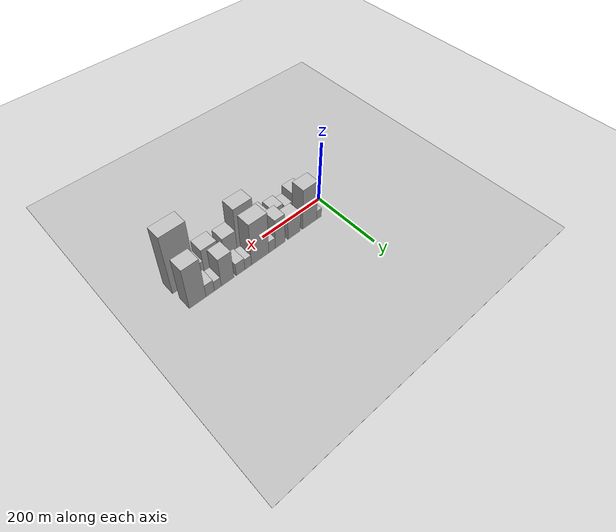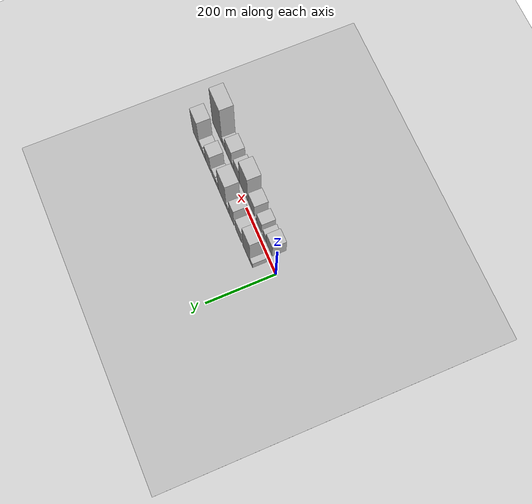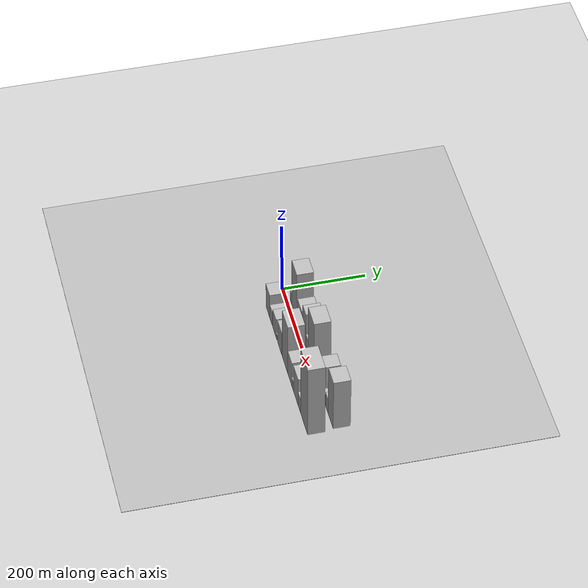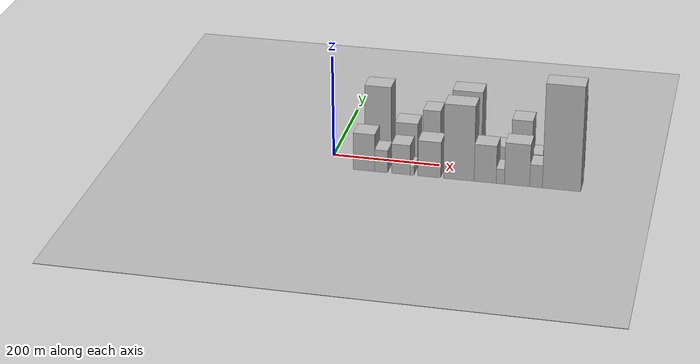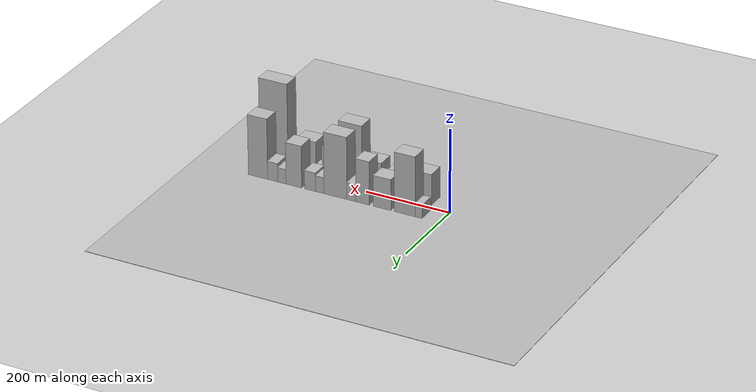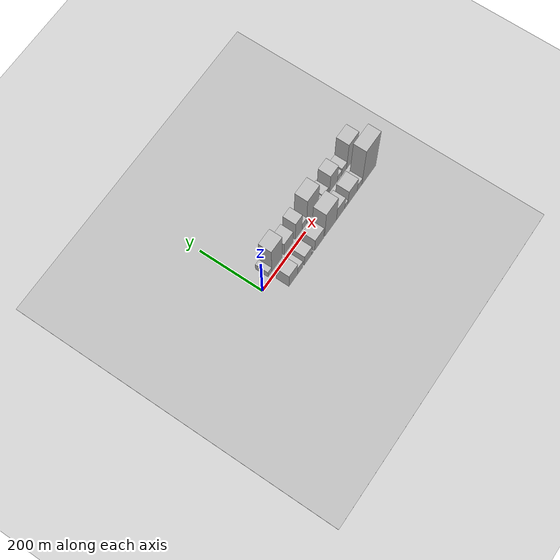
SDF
<?xml version="1.0" encoding="utf-8"?>

<sdf version="1.6">

   <world name="default">

      <gui fullscreen="0">

         <camera name="user_camera">

            <pose>-15 0 4.57585 0 0 0</pose>

            <view_controller>orbit</view_controller>

         </camera>

      </gui>

      <scene>

         <sky>

           <clouds>

             <speed>12</speed>

           </clouds>

         </sky>

         <ambient>0.4 0.4 0.4 1</ambient>

         <background>0.7 0.7 0.7 1</background>

         <shadows>1</shadows>

      </scene>

      <gravity>0 0 -9.8066</gravity>

      <magnetic_field>6e-06 2.3e-05 -4.2e-05</magnetic_field>

      <physics default="0" name="default_physics" type="ode">

         <ode>

            <solver>

               <type>quick</type>

               <iters>10</iters>

               <sor>1.0</sor>

               <use_dynamic_moi_rescaling>0</use_dynamic_moi_rescaling>

            </solver>

            <constraints>

               <cfm>0</cfm>

               <erp>0.2</erp>

               <contact_max_correcting_vel>100</contact_max_correcting_vel>

               <contact_surface_layer>0.001</contact_surface_layer>

            </constraints>

         </ode>

         <max_step_size>0.004</max_step_size>

         <real_time_factor>1</real_time_factor>

         <real_time_update_rate>250</real_time_update_rate>

      </physics>

      <light name="sun" type="directional">

         <cast_shadows>1</cast_shadows>

         <pose>0 0 10 0 0 0</pose>

         <diffuse>0.8 0.8 0.8 1</diffuse>

         <specular>0.2 0.2 0.2 1</specular>

         <attenuation>

            <range>1000</range>

            <constant>0.9</constant>

            <linear>0.01</linear>

            <quadratic>0.001</quadratic>

         </attenuation>

         <direction>-0.5 0.1 -0.9</direction>

      </light>

      <include>

         <name>ground_plane_1</name>

         <uri>model://HANNAS_ground_plane</uri>

         <pose>0 0 0  0 0 0</pose>

      </include>

      <include>

         <name>ground_plane_2</name>

         <uri>model://HANNAS_ground_plane</uri>

         <pose>100 0 0  0 0 0</pose>

      </include>

      <model name="building_1">

         <static>1</static>

         <pose frame="">48.5737 30.0000 0 0.000000 0.000000 1.570796</pose>

         <link name="link">

            <pose frame="">0 0 16.50 0 0 0</pose>

            <collision name="collision">

               <geometry>

                  <box>

                     <size>40.0000 17.1474 33.0000</size>

                  </box>

               </geometry>

               <max_contacts>10</max_contacts>

               <surface>

                  <contact>

                     <ode/>

                  </contact>

                  <bounce/>

                  <friction>

                     <torsional>

                        <ode/>

                     </torsional>

                     <ode/>

                  </friction>

               </surface>

            </collision>

            <visual name="visual">

               <cast_shadows>0</cast_shadows>

               <geometry>

                  <box>

                     <size>40.0000 17.1474 33.0000</size>

                  </box>

               </geometry>

               <material>

                  <script>

                     <uri>model://HANNAS_wall/materials/scripts</uri>

                     <uri>model://HANNAS_wall/materials/textures</uri>

                     <name>vrc/HANNAS_wall</name>

                  </script>

               </material>

            </visual>

            <self_collide>0</self_collide>

            <enable_wind>0</enable_wind>

            <kinematic>0</kinematic>

         </link>

      </model>

      <model name="building_2">

         <static>1</static>

         <pose frame="">81.9354 30.0000 0 0.000000 0.000000 1.570796</pose>

         <link name="link">

            <pose frame="">0 0 72.00 0 0 0</pose>

            <collision name="collision">

               <geometry>

                  <box>

                     <size>40.0000 49.5760 144.0000</size>

                  </box>

               </geometry>

               <max_contacts>10</max_contacts>

               <surface>

                  <contact>

                     <ode/>

                  </contact>

                  <bounce/>

                  <friction>

                     <torsional>

                        <ode/>

                     </torsional>

                     <ode/>

                  </friction>

               </surface>

            </collision>

            <visual name="visual">

               <cast_shadows>0</cast_shadows>

               <geometry>

                  <box>

                     <size>40.0000 49.5760 144.0000</size>

                  </box>

               </geometry>

               <material>

                  <script>

                     <uri>model://HANNAS_wall/materials/scripts</uri>

                     <uri>model://HANNAS_wall/materials/textures</uri>

                     <name>vrc/HANNAS_wall</name>

                  </script>

               </material>

            </visual>

            <self_collide>0</self_collide>

            <enable_wind>0</enable_wind>

            <kinematic>0</kinematic>

         </link>

      </model>

      <model name="building_3">

         <static>1</static>

         <pose frame="">135.8961 30.0000 0 0.000000 0.000000 1.570796</pose>

         <link name="link">

            <pose frame="">0 0 37.50 0 0 0</pose>

            <collision name="collision">

               <geometry>

                  <box>

                     <size>40.0000 42.3454 75.0000</size>

                  </box>

               </geometry>

               <max_contacts>10</max_contacts>

               <surface>

                  <contact>

                     <ode/>

                  </contact>

                  <bounce/>

                  <friction>

                     <torsional>

                        <ode/>

                     </torsional>

                     <ode/>

                  </friction>

               </surface>

            </collision>

            <visual name="visual">

               <cast_shadows>0</cast_shadows>

               <geometry>

                  <box>

                     <size>40.0000 42.3454 75.0000</size>

                  </box>

               </geometry>

               <material>

                  <script>

                     <uri>model://HANNAS_wall/materials/scripts</uri>

                     <uri>model://HANNAS_wall/materials/textures</uri>

                     <name>vrc/HANNAS_wall</name>

                  </script>

               </material>

            </visual>

            <self_collide>0</self_collide>

            <enable_wind>0</enable_wind>

            <kinematic>0</kinematic>

         </link>

      </model>

      <model name="building_4">

         <static>1</static>

         <pose frame="">183.2351 30.0000 0 0.000000 0.000000 1.570796</pose>

         <link name="link">

            <pose frame="">0 0 52.50 0 0 0</pose>

            <collision name="collision">

               <geometry>

                  <box>

                     <size>40.0000 32.3327 105.0000</size>

                  </box>

               </geometry>

               <max_contacts>10</max_contacts>

               <surface>

                  <contact>

                     <ode/>

                  </contact>

                  <bounce/>

                  <friction>

                     <torsional>

                        <ode/>

                     </torsional>

                     <ode/>

                  </friction>

               </surface>

            </collision>

            <visual name="visual">

               <cast_shadows>0</cast_shadows>

               <geometry>

                  <box>

                     <size>40.0000 32.3327 105.0000</size>

                  </box>

               </geometry>

               <material>

                  <script>

                     <uri>model://HANNAS_wall/materials/scripts</uri>

                     <uri>model://HANNAS_wall/materials/textures</uri>

                     <name>vrc/HANNAS_wall</name>

                  </script>

               </material>

            </visual>

            <self_collide>0</self_collide>

            <enable_wind>0</enable_wind>

            <kinematic>0</kinematic>

         </link>

      </model>

      <model name="building_5">

         <static>1</static>

         <pose frame="">210.2238 30.0000 0 0.000000 0.000000 1.570796</pose>

         <link name="link">

            <pose frame="">0 0 21.00 0 0 0</pose>

            <collision name="collision">

               <geometry>

                  <box>

                     <size>40.0000 21.6445 42.0000</size>

                  </box>

               </geometry>

               <max_contacts>10</max_contacts>

               <surface>

                  <contact>

                     <ode/>

                  </contact>

                  <bounce/>

                  <friction>

                     <torsional>

                        <ode/>

                     </torsional>

                     <ode/>

                  </friction>

               </surface>

            </collision>

            <visual name="visual">

               <cast_shadows>0</cast_shadows>

               <geometry>

                  <box>

                     <size>40.0000 21.6445 42.0000</size>

                  </box>

               </geometry>

               <material>

                  <script>

                     <uri>model://HANNAS_wall/materials/scripts</uri>

                     <uri>model://HANNAS_wall/materials/textures</uri>

                     <name>vrc/HANNAS_wall</name>

                  </script>

               </material>

            </visual>

            <self_collide>0</self_collide>

            <enable_wind>0</enable_wind>

            <kinematic>0</kinematic>

         </link>

      </model>

      <model name="building_6">

         <static>1</static>

         <pose frame="">248.8813 30.0000 0 0.000000 0.000000 1.570796</pose>

         <link name="link">

            <pose frame="">0 0 75.00 0 0 0</pose>

            <collision name="collision">

               <geometry>

                  <box>

                     <size>40.0000 55.6705 150.0000</size>

                  </box>

               </geometry>

               <max_contacts>10</max_contacts>

               <surface>

                  <contact>

                     <ode/>

                  </contact>

                  <bounce/>

                  <friction>

                     <torsional>

                        <ode/>

                     </torsional>

                     <ode/>

                  </friction>

               </surface>

            </collision>

            <visual name="visual">

               <cast_shadows>0</cast_shadows>

               <geometry>

                  <box>

                     <size>40.0000 55.6705 150.0000</size>

                  </box>

               </geometry>

               <material>

                  <script>

                     <uri>model://HANNAS_wall/materials/scripts</uri>

                     <uri>model://HANNAS_wall/materials/textures</uri>

                     <name>vrc/HANNAS_wall</name>

                  </script>

               </material>

            </visual>

            <self_collide>0</self_collide>

            <enable_wind>0</enable_wind>

            <kinematic>0</kinematic>

         </link>

      </model>

      <model name="building_7">

         <static>1</static>

         <pose frame="">287.0346 30.0000 0 0.000000 0.000000 1.570796</pose>

         <link name="link">

            <pose frame="">0 0 19.50 0 0 0</pose>

            <collision name="collision">

               <geometry>

                  <box>

                     <size>40.0000 20.6361 39.0000</size>

                  </box>

               </geometry>

               <max_contacts>10</max_contacts>

               <surface>

                  <contact>

                     <ode/>

                  </contact>

                  <bounce/>

                  <friction>

                     <torsional>

                        <ode/>

                     </torsional>

                     <ode/>

                  </friction>

               </surface>

            </collision>

            <visual name="visual">

               <cast_shadows>0</cast_shadows>

               <geometry>

                  <box>

                     <size>40.0000 20.6361 39.0000</size>

                  </box>

               </geometry>

               <material>

                  <script>

                     <uri>model://HANNAS_wall/materials/scripts</uri>

                     <uri>model://HANNAS_wall/materials/textures</uri>

                     <name>vrc/HANNAS_wall</name>

                  </script>

               </material>

            </visual>

            <self_collide>0</self_collide>

            <enable_wind>0</enable_wind>

            <kinematic>0</kinematic>

         </link>

      </model>

      <model name="building_8">

         <static>1</static>

         <pose frame="">310.8475 30.0000 0 0.000000 0.000000 1.570796</pose>

         <link name="link">

            <pose frame="">0 0 22.50 0 0 0</pose>

            <collision name="collision">

               <geometry>

                  <box>

                     <size>40.0000 26.9898 45.0000</size>

                  </box>

               </geometry>

               <max_contacts>10</max_contacts>

               <surface>

                  <contact>

                     <ode/>

                  </contact>

                  <bounce/>

                  <friction>

                     <torsional>

                        <ode/>

                     </torsional>

                     <ode/>

                  </friction>

               </surface>

            </collision>

            <visual name="visual">

               <cast_shadows>0</cast_shadows>

               <geometry>

                  <box>

                     <size>40.0000 26.9898 45.0000</size>

                  </box>

               </geometry>

               <material>

                  <script>

                     <uri>model://HANNAS_wall/materials/scripts</uri>

                     <uri>model://HANNAS_wall/materials/textures</uri>

                     <name>vrc/HANNAS_wall</name>

                  </script>

               </material>

            </visual>

            <self_collide>0</self_collide>

            <enable_wind>0</enable_wind>

            <kinematic>0</kinematic>

         </link>

      </model>

      <model name="building_9">

         <static>1</static>

         <pose frame="">350.5133 30.0000 0 0.000000 0.000000 1.570796</pose>

         <link name="link">

            <pose frame="">0 0 51.00 0 0 0</pose>

            <collision name="collision">

               <geometry>

                  <box>

                     <size>40.0000 38.3417 102.0000</size>

                  </box>

               </geometry>

               <max_contacts>10</max_contacts>

               <surface>

                  <contact>

                     <ode/>

                  </contact>

                  <bounce/>

                  <friction>

                     <torsional>

                        <ode/>

                     </torsional>

                     <ode/>

                  </friction>

               </surface>

            </collision>

            <visual name="visual">

               <cast_shadows>0</cast_shadows>

               <geometry>

                  <box>

                     <size>40.0000 38.3417 102.0000</size>

                  </box>

               </geometry>

               <material>

                  <script>

                     <uri>model://HANNAS_wall/materials/scripts</uri>

                     <uri>model://HANNAS_wall/materials/textures</uri>

                     <name>vrc/HANNAS_wall</name>

                  </script>

               </material>

            </visual>

            <self_collide>0</self_collide>

            <enable_wind>0</enable_wind>

            <kinematic>0</kinematic>

         </link>

      </model>

      <model name="building_10">

         <static>1</static>

         <pose frame="">379.8032 30.0000 0 0.000000 0.000000 1.570796</pose>

         <link name="link">

            <pose frame="">0 0 18.00 0 0 0</pose>

            <collision name="collision">

               <geometry>

                  <box>

                     <size>40.0000 20.2380 36.0000</size>

                  </box>

               </geometry>

               <max_contacts>10</max_contacts>

               <surface>

                  <contact>

                     <ode/>

                  </contact>

                  <bounce/>

                  <friction>

                     <torsional>

                        <ode/>

                     </torsional>

                     <ode/>

                  </friction>

               </surface>

            </collision>

            <visual name="visual">

               <cast_shadows>0</cast_shadows>

               <geometry>

                  <box>

                     <size>40.0000 20.2380 36.0000</size>

                  </box>

               </geometry>

               <material>

                  <script>

                     <uri>model://HANNAS_wall/materials/scripts</uri>

                     <uri>model://HANNAS_wall/materials/textures</uri>

                     <name>vrc/HANNAS_wall</name>

                  </script>

               </material>

            </visual>

            <self_collide>0</self_collide>

            <enable_wind>0</enable_wind>

            <kinematic>0</kinematic>

         </link>

      </model>

      <model name="building_11">

         <static>1</static>

         <pose frame="">402.3380 30.0000 0 0.000000 0.000000 1.570796</pose>

         <link name="link">

            <pose frame="">0 0 22.50 0 0 0</pose>

            <collision name="collision">

               <geometry>

                  <box>

                     <size>40.0000 24.8316 45.0000</size>

                  </box>

               </geometry>

               <max_contacts>10</max_contacts>

               <surface>

                  <contact>

                     <ode/>

                  </contact>

                  <bounce/>

                  <friction>

                     <torsional>

                        <ode/>

                     </torsional>

                     <ode/>

                  </friction>

               </surface>

            </collision>

            <visual name="visual">

               <cast_shadows>0</cast_shadows>

               <geometry>

                  <box>

                     <size>40.0000 24.8316 45.0000</size>

                  </box>

               </geometry>

               <material>

                  <script>

                     <uri>model://HANNAS_wall/materials/scripts</uri>

                     <uri>model://HANNAS_wall/materials/textures</uri>

                     <name>vrc/HANNAS_wall</name>

                  </script>

               </material>

            </visual>

            <self_collide>0</self_collide>

            <enable_wind>0</enable_wind>

            <kinematic>0</kinematic>

         </link>

      </model>

      <model name="building_12">

         <static>1</static>

         <pose frame="">438.5787 30.0000 0 0.000000 0.000000 1.570796</pose>

         <link name="link">

            <pose frame="">0 0 73.50 0 0 0</pose>

            <collision name="collision">

               <geometry>

                  <box>

                     <size>40.0000 47.6497 147.0000</size>

                  </box>

               </geometry>

               <max_contacts>10</max_contacts>

               <surface>

                  <contact>

                     <ode/>

                  </contact>

                  <bounce/>

                  <friction>

                     <torsional>

                        <ode/>

                     </torsional>

                     <ode/>

                  </friction>

               </surface>

            </collision>

            <visual name="visual">

               <cast_shadows>0</cast_shadows>

               <geometry>

                  <box>

                     <size>40.0000 47.6497 147.0000</size>

                  </box>

               </geometry>

               <material>

                  <script>

                     <uri>model://HANNAS_wall/materials/scripts</uri>

                     <uri>model://HANNAS_wall/materials/textures</uri>

                     <name>vrc/HANNAS_wall</name>

                  </script>

               </material>

            </visual>

            <self_collide>0</self_collide>

            <enable_wind>0</enable_wind>

            <kinematic>0</kinematic>

         </link>

      </model>

      <model name="building_13">

         <static>1</static>

         <pose frame="">69.1378 -30.0000 0 0.000000 0.000000 1.570796</pose>

         <link name="link">

            <pose frame="">0 0 37.50 0 0 0</pose>

            <collision name="collision">

               <geometry>

                  <box>

                     <size>40.0000 40.2757 75.0000</size>

                  </box>

               </geometry>

               <max_contacts>10</max_contacts>

               <surface>

                  <contact>

                     <ode/>

                  </contact>

                  <bounce/>

                  <friction>

                     <torsional>

                        <ode/>

                     </torsional>

                     <ode/>

                  </friction>

               </surface>

            </collision>

            <visual name="visual">

               <cast_shadows>0</cast_shadows>

               <geometry>

                  <box>

                     <size>40.0000 40.2757 75.0000</size>

                  </box>

               </geometry>

               <material>

                  <script>

                     <uri>model://HANNAS_wall/materials/scripts</uri>

                     <uri>model://HANNAS_wall/materials/textures</uri>

                     <name>vrc/HANNAS_wall</name>

                  </script>

               </material>

            </visual>

            <self_collide>0</self_collide>

            <enable_wind>0</enable_wind>

            <kinematic>0</kinematic>

         </link>

      </model>

      <model name="building_14">

         <static>1</static>

         <pose frame="">101.3730 -30.0000 0 0.000000 0.000000 1.570796</pose>

         <link name="link">

            <pose frame="">0 0 22.50 0 0 0</pose>

            <collision name="collision">

               <geometry>

                  <box>

                     <size>40.0000 24.1945 45.0000</size>

                  </box>

               </geometry>

               <max_contacts>10</max_contacts>

               <surface>

                  <contact>

                     <ode/>

                  </contact>

                  <bounce/>

                  <friction>

                     <torsional>

                        <ode/>

                     </torsional>

                     <ode/>

                  </friction>

               </surface>

            </collision>

            <visual name="visual">

               <cast_shadows>0</cast_shadows>

               <geometry>

                  <box>

                     <size>40.0000 24.1945 45.0000</size>

                  </box>

               </geometry>

               <material>

                  <script>

                     <uri>model://HANNAS_wall/materials/scripts</uri>

                     <uri>model://HANNAS_wall/materials/textures</uri>

                     <name>vrc/HANNAS_wall</name>

                  </script>

               </material>

            </visual>

            <self_collide>0</self_collide>

            <enable_wind>0</enable_wind>

            <kinematic>0</kinematic>

         </link>

      </model>

      <model name="building_15">

         <static>1</static>

         <pose frame="">137.7947 -30.0000 0 0.000000 0.000000 1.570796</pose>

         <link name="link">

            <pose frame="">0 0 30.00 0 0 0</pose>

            <collision name="collision">

               <geometry>

                  <box>

                     <size>40.0000 34.6490 60.0000</size>

                  </box>

               </geometry>

               <max_contacts>10</max_contacts>

               <surface>

                  <contact>

                     <ode/>

                  </contact>

                  <bounce/>

                  <friction>

                     <torsional>

                        <ode/>

                     </torsional>

                     <ode/>

                  </friction>

               </surface>

            </collision>

            <visual name="visual">

               <cast_shadows>0</cast_shadows>

               <geometry>

                  <box>

                     <size>40.0000 34.6490 60.0000</size>

                  </box>

               </geometry>

               <material>

                  <script>

                     <uri>model://HANNAS_wall/materials/scripts</uri>

                     <uri>model://HANNAS_wall/materials/textures</uri>

                     <name>vrc/HANNAS_wall</name>

                  </script>

               </material>

            </visual>

            <self_collide>0</self_collide>

            <enable_wind>0</enable_wind>

            <kinematic>0</kinematic>

         </link>

      </model>

      <model name="building_16">

         <static>1</static>

         <pose frame="">158.8252 -30.0000 0 0.000000 0.000000 1.570796</pose>

         <link name="link">

            <pose frame="">0 0 9.00 0 0 0</pose>

            <collision name="collision">

               <geometry>

                  <box>

                     <size>40.0000 7.4119 18.0000</size>

                  </box>

               </geometry>

               <max_contacts>10</max_contacts>

               <surface>

                  <contact>

                     <ode/>

                  </contact>

                  <bounce/>

                  <friction>

                     <torsional>

                        <ode/>

                     </torsional>

                     <ode/>

                  </friction>

               </surface>

            </collision>

            <visual name="visual">

               <cast_shadows>0</cast_shadows>

               <geometry>

                  <box>

                     <size>40.0000 7.4119 18.0000</size>

                  </box>

               </geometry>

               <material>

                  <script>

                     <uri>model://HANNAS_wall/materials/scripts</uri>

                     <uri>model://HANNAS_wall/materials/textures</uri>

                     <name>vrc/HANNAS_wall</name>

                  </script>

               </material>

            </visual>

            <self_collide>0</self_collide>

            <enable_wind>0</enable_wind>

            <kinematic>0</kinematic>

         </link>

      </model>

      <model name="building_17">

         <static>1</static>

         <pose frame="">190.7466 -30.0000 0 0.000000 0.000000 1.570796</pose>

         <link name="link">

            <pose frame="">0 0 36.00 0 0 0</pose>

            <collision name="collision">

               <geometry>

                  <box>

                     <size>40.0000 42.4309 72.0000</size>

                  </box>

               </geometry>

               <max_contacts>10</max_contacts>

               <surface>

                  <contact>

                     <ode/>

                  </contact>

                  <bounce/>

                  <friction>

                     <torsional>

                        <ode/>

                     </torsional>

                     <ode/>

                  </friction>

               </surface>

            </collision>

            <visual name="visual">

               <cast_shadows>0</cast_shadows>

               <geometry>

                  <box>

                     <size>40.0000 42.4309 72.0000</size>

                  </box>

               </geometry>

               <material>

                  <script>

                     <uri>model://HANNAS_wall/materials/scripts</uri>

                     <uri>model://HANNAS_wall/materials/textures</uri>

                     <name>vrc/HANNAS_wall</name>

                  </script>

               </material>

            </visual>

            <self_collide>0</self_collide>

            <enable_wind>0</enable_wind>

            <kinematic>0</kinematic>

         </link>

      </model>

      <model name="building_18">

         <static>1</static>

         <pose frame="">245.2908 -30.0000 0 0.000000 0.000000 1.570796</pose>

         <link name="link">

            <pose frame="">0 0 75.00 0 0 0</pose>

            <collision name="collision">

               <geometry>

                  <box>

                     <size>40.0000 56.6573 150.0000</size>

                  </box>

               </geometry>

               <max_contacts>10</max_contacts>

               <surface>

                  <contact>

                     <ode/>

                  </contact>

                  <bounce/>

                  <friction>

                     <torsional>

                        <ode/>

                     </torsional>

                     <ode/>

                  </friction>

               </surface>

            </collision>

            <visual name="visual">

               <cast_shadows>0</cast_shadows>

               <geometry>

                  <box>

                     <size>40.0000 56.6573 150.0000</size>

                  </box>

               </geometry>

               <material>

                  <script>

                     <uri>model://HANNAS_wall/materials/scripts</uri>

                     <uri>model://HANNAS_wall/materials/textures</uri>

                     <name>vrc/HANNAS_wall</name>

                  </script>

               </material>

            </visual>

            <self_collide>0</self_collide>

            <enable_wind>0</enable_wind>

            <kinematic>0</kinematic>

         </link>

      </model>

      <model name="building_19">

         <static>1</static>

         <pose frame="">293.7954 -30.0000 0 0.000000 0.000000 1.570796</pose>

         <link name="link">

            <pose frame="">0 0 37.50 0 0 0</pose>

            <collision name="collision">

               <geometry>

                  <box>

                     <size>40.0000 40.3519 75.0000</size>

                  </box>

               </geometry>

               <max_contacts>10</max_contacts>

               <surface>

                  <contact>

                     <ode/>

                  </contact>

                  <bounce/>

                  <friction>

                     <torsional>

                        <ode/>

                     </torsional>

                     <ode/>

                  </friction>

               </surface>

            </collision>

            <visual name="visual">

               <cast_shadows>0</cast_shadows>

               <geometry>

                  <box>

                     <size>40.0000 40.3519 75.0000</size>

                  </box>

               </geometry>

               <material>

                  <script>

                     <uri>model://HANNAS_wall/materials/scripts</uri>

                     <uri>model://HANNAS_wall/materials/textures</uri>

                     <name>vrc/HANNAS_wall</name>

                  </script>

               </material>

            </visual>

            <self_collide>0</self_collide>

            <enable_wind>0</enable_wind>

            <kinematic>0</kinematic>

         </link>

      </model>

      <model name="building_20">

         <static>1</static>

         <pose frame="">321.4740 -30.0000 0 0.000000 0.000000 1.570796</pose>

         <link name="link">

            <pose frame="">0 0 15.00 0 0 0</pose>

            <collision name="collision">

               <geometry>

                  <box>

                     <size>40.0000 15.0052 30.0000</size>

                  </box>

               </geometry>

               <max_contacts>10</max_contacts>

               <surface>

                  <contact>

                     <ode/>

                  </contact>

                  <bounce/>

                  <friction>

                     <torsional>

                        <ode/>

                     </torsional>

                     <ode/>

                  </friction>

               </surface>

            </collision>

            <visual name="visual">

               <cast_shadows>0</cast_shadows>

               <geometry>

                  <box>

                     <size>40.0000 15.0052 30.0000</size>

                  </box>

               </geometry>

               <material>

                  <script>

                     <uri>model://HANNAS_wall/materials/scripts</uri>

                     <uri>model://HANNAS_wall/materials/textures</uri>

                     <name>vrc/HANNAS_wall</name>

                  </script>

               </material>

            </visual>

            <self_collide>0</self_collide>

            <enable_wind>0</enable_wind>

            <kinematic>0</kinematic>

         </link>

      </model>

      <model name="building_21">

         <static>1</static>

         <pose frame="">352.0310 -30.0000 0 0.000000 0.000000 1.570796</pose>

         <link name="link">

            <pose frame="">0 0 42.00 0 0 0</pose>

            <collision name="collision">

               <geometry>

                  <box>

                     <size>40.0000 46.1087 84.0000</size>

                  </box>

               </geometry>

               <max_contacts>10</max_contacts>

               <surface>

                  <contact>

                     <ode/>

                  </contact>

                  <bounce/>

                  <friction>

                     <torsional>

                        <ode/>

                     </torsional>

                     <ode/>

                  </friction>

               </surface>

            </collision>

            <visual name="visual">

               <cast_shadows>0</cast_shadows>

               <geometry>

                  <box>

                     <size>40.0000 46.1087 84.0000</size>

                  </box>

               </geometry>

               <material>

                  <script>

                     <uri>model://HANNAS_wall/materials/scripts</uri>

                     <uri>model://HANNAS_wall/materials/textures</uri>

                     <name>vrc/HANNAS_wall</name>

                  </script>

               </material>

            </visual>

            <self_collide>0</self_collide>

            <enable_wind>0</enable_wind>

            <kinematic>0</kinematic>

         </link>

      </model>

      <model name="building_22">

         <static>1</static>

         <pose frame="">386.5818 -30.0000 0 0.000000 0.000000 1.570796</pose>

         <link name="link">

            <pose frame="">0 0 22.50 0 0 0</pose>

            <collision name="collision">

               <geometry>

                  <box>

                     <size>40.0000 22.9930 45.0000</size>

                  </box>

               </geometry>

               <max_contacts>10</max_contacts>

               <surface>

                  <contact>

                     <ode/>

                  </contact>

                  <bounce/>

                  <friction>

                     <torsional>

                        <ode/>

                     </torsional>

                     <ode/>

                  </friction>

               </surface>

            </collision>

            <visual name="visual">

               <cast_shadows>0</cast_shadows>

               <geometry>

                  <box>

                     <size>40.0000 22.9930 45.0000</size>

                  </box>

               </geometry>

               <material>

                  <script>

                     <uri>model://HANNAS_wall/materials/scripts</uri>

                     <uri>model://HANNAS_wall/materials/textures</uri>

                     <name>vrc/HANNAS_wall</name>

                  </script>

               </material>

            </visual>

            <self_collide>0</self_collide>

            <enable_wind>0</enable_wind>

            <kinematic>0</kinematic>

         </link>

      </model>

      <model name="building_23">

         <static>1</static>

         <pose frame="">432.8711 -30.0000 0 0.000000 0.000000 1.570796</pose>

         <link name="link">

            <pose frame="">0 0 103.50 0 0 0</pose>

            <collision name="collision">

               <geometry>

                  <box>

                     <size>40.0000 69.5854 207.0000</size>

                  </box>

               </geometry>

               <max_contacts>10</max_contacts>

               <surface>

                  <contact>

                     <ode/>

                  </contact>

                  <bounce/>

                  <friction>

                     <torsional>

                        <ode/>

                     </torsional>

                     <ode/>

                  </friction>

               </surface>

            </collision>

            <visual name="visual">

               <cast_shadows>0</cast_shadows>

               <geometry>

                  <box>

                     <size>40.0000 69.5854 207.0000</size>

                  </box>

               </geometry>

               <material>

                  <script>

                     <uri>model://HANNAS_wall/materials/scripts</uri>

                     <uri>model://HANNAS_wall/materials/textures</uri>

                     <name>vrc/HANNAS_wall</name>

                  </script>

               </material>

            </visual>

            <self_collide>0</self_collide>

            <enable_wind>0</enable_wind>

            <kinematic>0</kinematic>

         </link>

      </model>

   </world>

</sdf>

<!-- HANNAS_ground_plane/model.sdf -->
<sdf version="1.4">
<model name="HANNAS_ground_plane">
  <static>true</static>
    <link name="link">
      <collision name="collision">
        <geometry>
          <plane>
            <normal>0 0 1</normal>
            <size>1000 1000</size>
          </plane>
        </geometry>
        <surface>
          <friction>
            <ode>
              <mu>100</mu>
              <mu2>50</mu2>
            </ode>
          </friction>
        </surface>
      </collision>
      <visual name="visual">
        <cast_shadows>false</cast_shadows>
        <geometry>
          <plane>
            <normal>0 0 1</normal>
            <size>1000 1000</size>
          </plane>
        </geometry>
        <material>
          <script>
            <uri>model://HANNAS_ground_plane/materials/scripts/HANNAS_ground_plane.material</uri>
	    <uri>model://HANNAS_ground_plane/materials/textures</uri>
            <name>HANNASGroundPlane/Image</name>
          </script>
        </material>
      </visual>
    </link>
  </model>
</sdf>
